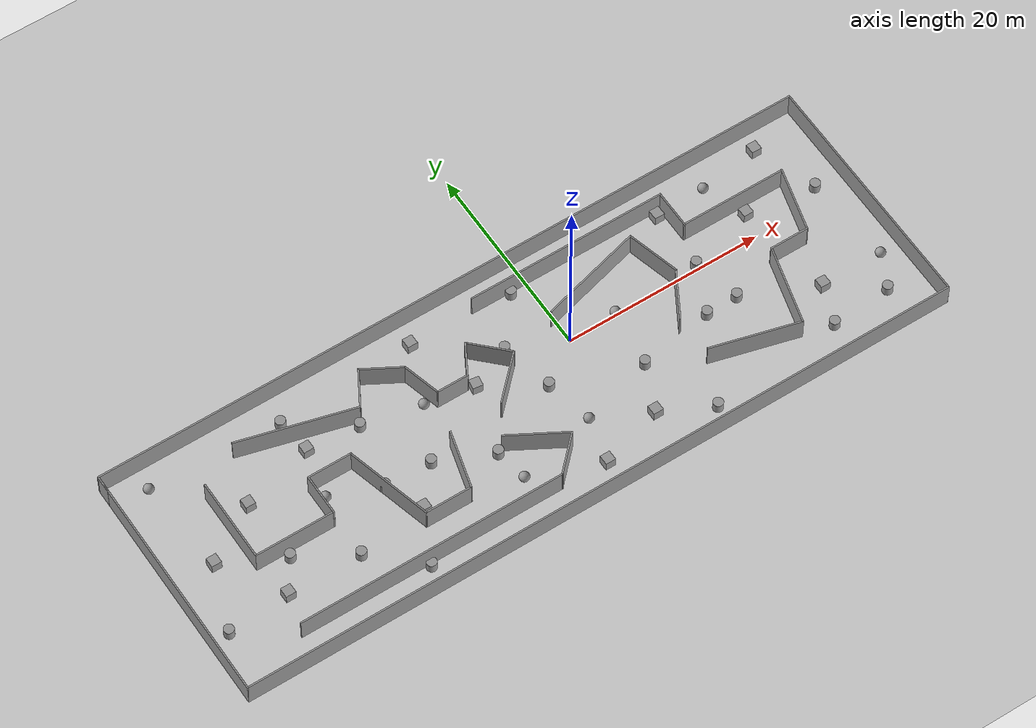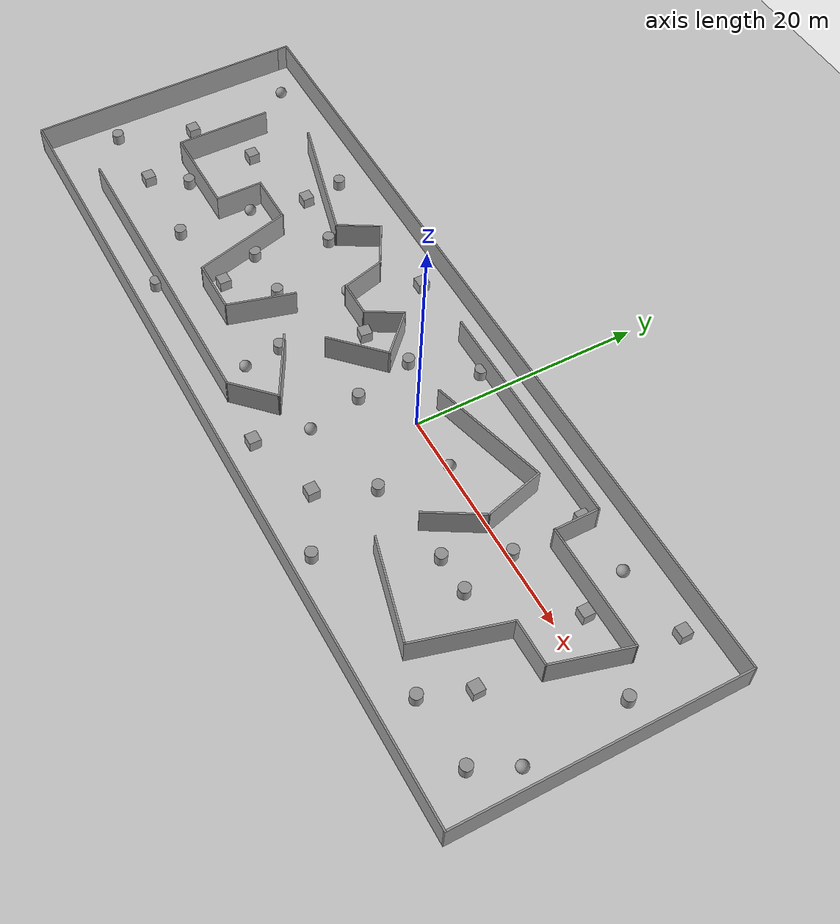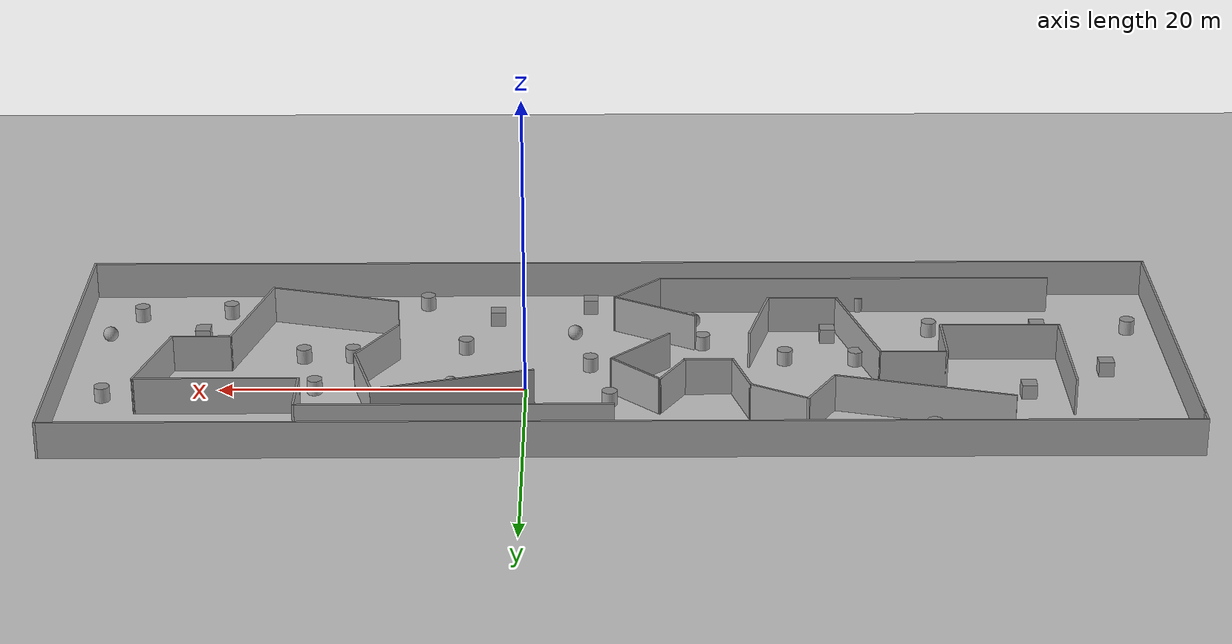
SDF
<sdf version="1.7">
 <world name="default">
  <light name="sun" type="directional">
   <pose>0 0 10 0 -0 0</pose>
   <diffuse>0.8 0.8 0.8 1</diffuse>
   <specular>0.2 0.2 0.2 1</specular>
   <attenuation>
    <range>1000</range>
    <constant>0.9</constant>
    <linear>0.01</linear>
    <quadratic>0.001</quadratic>
   </attenuation>
   <direction>-0.5 0.1 -0.9</direction>
   <spot><inner_angle>0</inner_angle><outer_angle>0</outer_angle><falloff>0</falloff></spot>
  </light>
  <model name="ground_plane">
   <static>1</static>
   <link name="link">
    <collision name="collision">
     <geometry><plane><normal>0 0 1</normal><size>100 100</size></plane></geometry>
     <surface>
      <contact><collide_bitmask>65535</collide_bitmask></contact>
      <friction><ode><mu>100</mu><mu2>50</mu2></ode></friction>
     </surface>
    </collision>
    <visual name="visual">
     <cast_shadows>0</cast_shadows>
     <geometry><plane><normal>0 0 1</normal><size>100 100</size></plane></geometry>
     <material>
      <script><uri>file://media/materials/scripts/gazebo.material</uri><name>Gazebo/Grey</name></script>
     </material>
    </visual>
   </link>
  </model>
  <physics type="ode">
   <max_step_size>0.01</max_step_size>
   <real_time_factor>1</real_time_factor>
   <real_time_update_rate>100</real_time_update_rate>
  </physics>
  <gravity>0 0 -9.8</gravity>
  <magnetic_field>6e-06 2.3e-05 -4.2e-05</magnetic_field>
  <atmosphere type="adiabatic"/>
  <scene><ambient>0.4 0.4 0.4 1</ambient><background>0.7 0.7 0.7 1</background><shadows>1</shadows></scene>
  <spherical_coordinates>
   <surface_model>EARTH_WGS84</surface_model>
   <latitude_deg>0</latitude_deg>
   <longitude_deg>0</longitude_deg>
   <elevation>0</elevation>
   <heading_deg>0</heading_deg>
  </spherical_coordinates>
  <model name="best1">
   <pose>-6.21123 -2.71143 0 0 -0 0</pose>
   <link name="Wall_1">
    <collision name="Wall_1_Collision">
     <geometry><box><size>23.75 0.15 2.5</size></box></geometry>
     <pose>0 0 1.25 0 -0 0</pose>
    </collision>
    <visual name="Wall_1_Visual">
     <pose>0 0 1.25 0 -0 0</pose>
     <geometry><box><size>23.75 0.15 2.5</size></box></geometry>
     <material>
      <script><uri>file://media/materials/scripts/gazebo.material</uri><name>Gazebo/Grey</name></script>
      <ambient>1 1 1 1</ambient>
     </material>
     <meta><layer>0</layer></meta>
    </visual>
    <pose>-36.425 -0.5 0 0 -0 -1.5708</pose>
   </link>
   <link name="Wall_10">
    <collision name="Wall_10_Collision">
     <geometry><box><size>4.5 0.15 2.5</size></box></geometry>
     <pose>0 0 1.25 0 -0 0</pose>
    </collision>
    <visual name="Wall_10_Visual">
     <pose>0 0 1.25 0 -0 0</pose>
     <geometry><box><size>4.5 0.15 2.5</size></box></geometry>
     <material>
      <script><uri>file://media/materials/scripts/gazebo.material</uri><name>Gazebo/Grey</name></script>
      <ambient>1 1 1 1</ambient>
     </material>
     <meta><layer>0</layer></meta>
    </visual>
    <pose>-19.0998 2.30487 0 0 -0 0</pose>
   </link>
   <link name="Wall_11">
    <collision name="Wall_11_Collision">
     <geometry><box><size>9 0.15 2.5</size></box></geometry>
     <pose>0 0 1.25 0 -0 0</pose>
    </collision>
    <visual name="Wall_11_Visual">
     <pose>0 0 1.25 0 -0 0</pose>
     <geometry><box><size>9 0.15 2.5</size></box></geometry>
     <material>
      <script><uri>file://media/materials/scripts/gazebo.material</uri><name>Gazebo/Grey</name></script>
      <ambient>1 1 1 1</ambient>
     </material>
     <meta><layer>0</layer></meta>
    </visual>
    <pose>-15.7795 -1.96935 0 0 -0 -1.309</pose>
   </link>
   <link name="Wall_12">
    <collision name="Wall_12_Collision">
     <geometry><box><size>4.75 0.15 2.5</size></box></geometry>
     <pose>0 0 1.25 0 -0 0</pose>
    </collision>
    <visual name="Wall_12_Visual">
     <pose>0 0 1.25 0 -0 0</pose>
     <geometry><box><size>4.75 0.15 2.5</size></box></geometry>
     <material>
      <script><uri>file://media/materials/scripts/gazebo.material</uri><name>Gazebo/Grey</name></script>
      <ambient>1 1 1 1</ambient>
     </material>
     <meta><layer>0</layer></meta>
    </visual>
    <pose>-12.3343 -6.24357 0 0 -0 0</pose>
   </link>
   <link name="Wall_13">
    <collision name="Wall_13_Collision">
     <geometry><box><size>6 0.15 2.5</size></box></geometry>
     <pose>0 0 1.25 0 -0 0</pose>
    </collision>
    <visual name="Wall_13_Visual">
     <pose>0 0 1.25 0 -0 0</pose>
     <geometry><box><size>6 0.15 2.5</size></box></geometry>
     <material>
      <script><uri>file://media/materials/scripts/gazebo.material</uri><name>Gazebo/Grey</name></script>
      <ambient>1 1 1 1</ambient>
     </material>
     <meta><layer>0</layer></meta>
    </visual>
    <pose>-9.27721 -3.41824 0 0 -0 1.309</pose>
   </link>
   <link name="Wall_15">
    <collision name="Wall_15_Collision">
     <geometry><box><size>10.75 0.15 2.5</size></box></geometry>
     <pose>0 0 1.25 0 -0 0</pose>
    </collision>
    <visual name="Wall_15_Visual">
     <pose>0 0 1.25 0 -0 0</pose>
     <geometry><box><size>10.75 0.15 2.5</size></box></geometry>
     <material>
      <script><uri>file://media/materials/scripts/gazebo.material</uri><name>Gazebo/Grey</name></script>
      <ambient>1 1 1 1</ambient>
     </material>
     <meta><layer>0</layer></meta>
    </visual>
    <pose>10.7922 6.28407 0 0 -0 0.261799</pose>
   </link>
   <link name="Wall_16">
    <collision name="Wall_16_Collision">
     <geometry><box><size>5.5 0.15 2.5</size></box></geometry>
     <pose>0 0 1.25 0 -0 0</pose>
    </collision>
    <visual name="Wall_16_Visual">
     <pose>0 0 1.25 0 -0 0</pose>
     <geometry><box><size>5.5 0.15 2.5</size></box></geometry>
     <material>
      <script><uri>file://media/materials/scripts/gazebo.material</uri><name>Gazebo/Grey</name></script>
      <ambient>1 1 1 1</ambient>
     </material>
     <meta><layer>0</layer></meta>
    </visual>
    <pose>16.604 5.07195 0 0 -0 -1.309</pose>
   </link>
   <link name="Wall_17">
    <collision name="Wall_17_Collision">
     <geometry><box><size>5.25 0.15 2.5</size></box></geometry>
     <pose>0 0 1.25 0 -0 0</pose>
    </collision>
    <visual name="Wall_17_Visual">
     <pose>0 0 1.25 0 -0 0</pose>
     <geometry><box><size>5.25 0.15 2.5</size></box></geometry>
     <material>
      <script><uri>file://media/materials/scripts/gazebo.material</uri><name>Gazebo/Grey</name></script>
      <ambient>1 1 1 1</ambient>
     </material>
     <meta><layer>0</layer></meta>
    </visual>
    <pose>16.0213 0.279738 0 0 -0 -2.0944</pose>
   </link>
   <link name="Wall_19">
    <collision name="Wall_19_Collision">
     <geometry><box><size>9 0.15 2.5</size></box></geometry>
     <pose>0 0 1.25 0 -0 0</pose>
    </collision>
    <visual name="Wall_19_Visual">
     <pose>0 0 1.25 0 -0 0</pose>
     <geometry><box><size>9 0.15 2.5</size></box></geometry>
     <material>
      <script><uri>file://media/materials/scripts/gazebo.material</uri><name>Gazebo/Grey</name></script>
      <ambient>1 1 1 1</ambient>
     </material>
     <meta><layer>0</layer></meta>
    </visual>
    <pose>19.3156 -7.00075 0 0 -0 -0.261799</pose>
   </link>
   <link name="Wall_2">
    <collision name="Wall_2_Collision">
     <geometry><box><size>73 0.15 2.5</size></box></geometry>
     <pose>0 0 1.25 0 -0 0</pose>
    </collision>
    <visual name="Wall_2_Visual">
     <pose>0 0 1.25 0 -0 0</pose>
     <geometry><box><size>73 0.15 2.5</size></box></geometry>
     <material>
      <script><uri>file://media/materials/scripts/gazebo.material</uri><name>Gazebo/Grey</name></script>
      <ambient>1 1 1 1</ambient>
     </material>
     <meta><layer>0</layer></meta>
    </visual>
    <pose>0 -12.3 0 0 -0 0</pose>
   </link>
   <link name="Wall_20">
    <collision name="Wall_20_Collision">
     <geometry><box><size>8.25 0.15 2.5</size></box></geometry>
     <pose>0 0 1.25 0 -0 0</pose>
    </collision>
    <visual name="Wall_20_Visual">
     <pose>0 0 1.25 0 -0 0</pose>
     <geometry><box><size>8.25 0.15 2.5</size></box></geometry>
     <material>
      <script><uri>file://media/materials/scripts/gazebo.material</uri><name>Gazebo/Grey</name></script>
      <ambient>1 1 1 1</ambient>
     </material>
     <meta><layer>0</layer></meta>
    </visual>
    <pose>24.6381 -4.23402 0 0 -0 1.309</pose>
   </link>
   <link name="Wall_21">
    <collision name="Wall_21_Collision">
     <geometry><box><size>4 0.15 2.5</size></box></geometry>
     <pose>0 0 1.25 0 -0 0</pose>
    </collision>
    <visual name="Wall_21_Visual">
     <pose>0 0 1.25 0 -0 0</pose>
     <geometry><box><size>4 0.15 2.5</size></box></geometry>
     <material>
      <script><uri>file://media/materials/scripts/gazebo.material</uri><name>Gazebo/Grey</name></script>
      <ambient>1 1 1 1</ambient>
     </material>
     <meta><layer>0</layer></meta>
    </visual>
    <pose>27.6113 -0.32202 0 0 -0 0</pose>
   </link>
   <link name="Wall_22">
    <collision name="Wall_22_Collision">
     <geometry><box><size>6.75 0.15 2.5</size></box></geometry>
     <pose>0 0 1.25 0 -0 0</pose>
    </collision>
    <visual name="Wall_22_Visual">
     <pose>0 0 1.25 0 -0 0</pose>
     <geometry><box><size>6.75 0.15 2.5</size></box></geometry>
     <material>
      <script><uri>file://media/materials/scripts/gazebo.material</uri><name>Gazebo/Grey</name></script>
      <ambient>1 1 1 1</ambient>
     </material>
     <meta><layer>0</layer></meta>
    </visual>
    <pose>30.3904 2.86553 0 0 -0 1.309</pose>
   </link>
   <link name="Wall_23">
    <collision name="Wall_23_Collision">
     <geometry><box><size>10.75 0.15 2.5</size></box></geometry>
     <pose>0 0 1.25 0 -0 0</pose>
    </collision>
    <visual name="Wall_23_Visual">
     <pose>0 0 1.25 0 -0 0</pose>
     <geometry><box><size>10.75 0.15 2.5</size></box></geometry>
     <material>
      <script><uri>file://media/materials/scripts/gazebo.material</uri><name>Gazebo/Grey</name></script>
      <ambient>1 1 1 1</ambient>
     </material>
     <meta><layer>0</layer></meta>
    </visual>
    <pose>25.9445 6.05309 0 0 -0 3.14159</pose>
   </link>
   <link name="Wall_24">
    <collision name="Wall_24_Collision">
     <geometry><box><size>4 0.15 2.5</size></box></geometry>
     <pose>0 0 1.25 0 -0 0</pose>
    </collision>
    <visual name="Wall_24_Visual">
     <pose>0 0 1.25 0 -0 0</pose>
     <geometry><box><size>4 0.15 2.5</size></box></geometry>
     <material>
      <script><uri>file://media/materials/scripts/gazebo.material</uri><name>Gazebo/Grey</name></script>
      <ambient>1 1 1 1</ambient>
     </material>
     <meta><layer>0</layer></meta>
    </visual>
    <pose>20.6445 7.97809 0 0 -0 1.5708</pose>
   </link>
   <link name="Wall_25">
    <collision name="Wall_25_Collision">
     <geometry><box><size>20.25 0.15 2.5</size></box></geometry>
     <pose>0 0 1.25 0 -0 0</pose>
    </collision>
    <visual name="Wall_25_Visual">
     <pose>0 0 1.25 0 -0 0</pose>
     <geometry><box><size>20.25 0.15 2.5</size></box></geometry>
     <material>
      <script><uri>file://media/materials/scripts/gazebo.material</uri><name>Gazebo/Grey</name></script>
      <ambient>1 1 1 1</ambient>
     </material>
     <meta><layer>0</layer></meta>
    </visual>
    <pose>10.5945 9.90309 0 0 -0 3.14159</pose>
   </link>
   <link name="Wall_27">
    <collision name="Wall_27_Collision">
     <geometry><box><size>26.75 0.15 2.5</size></box></geometry>
     <pose>0 0 1.25 0 -0 0</pose>
    </collision>
    <visual name="Wall_27_Visual">
     <pose>0 0 1.25 0 -0 0</pose>
     <geometry><box><size>26.75 0.15 2.5</size></box></geometry>
     <material>
      <script><uri>file://media/materials/scripts/gazebo.material</uri><name>Gazebo/Grey</name></script>
      <ambient>1 1 1 1</ambient>
     </material>
     <meta><layer>0</layer></meta>
    </visual>
    <pose>-16.0681 -9.50557 0 0 -0 0</pose>
   </link>
   <link name="Wall_28">
    <collision name="Wall_28_Collision">
     <geometry><box><size>4.5 0.15 2.5</size></box></geometry>
     <pose>0 0 1.25 0 -0 0</pose>
    </collision>
    <visual name="Wall_28_Visual">
     <pose>0 0 1.25 0 -0 0</pose>
     <geometry><box><size>4.5 0.15 2.5</size></box></geometry>
     <material>
      <script><uri>file://media/materials/scripts/gazebo.material</uri><name>Gazebo/Grey</name></script>
      <ambient>1 1 1 1</ambient>
     </material>
     <meta><layer>0</layer></meta>
    </visual>
    <pose>-1.23018 -7.96761 0 0 -0 0.785398</pose>
   </link>
   <link name="Wall_29">
    <collision name="Wall_29_Collision">
     <geometry><box><size>6.25 0.15 2.5</size></box></geometry>
     <pose>0 0 1.25 0 -0 0</pose>
    </collision>
    <visual name="Wall_29_Visual">
     <pose>0 0 1.25 0 -0 0</pose>
     <geometry><box><size>6.25 0.15 2.5</size></box></geometry>
     <material>
      <script><uri>file://media/materials/scripts/gazebo.material</uri><name>Gazebo/Grey</name></script>
      <ambient>1 1 1 1</ambient>
     </material>
     <meta><layer>0</layer></meta>
    </visual>
    <pose>-2.3336 -4.90466 0 0 -0 2.61799</pose>
   </link>
   <link name="Wall_3">
    <collision name="Wall_3_Collision">
     <geometry><box><size>24.75 0.15 2.5</size></box></geometry>
     <pose>0 0 1.25 0 -0 0</pose>
    </collision>
    <visual name="Wall_3_Visual">
     <pose>0 0 1.25 0 -0 0</pose>
     <geometry><box><size>24.75 0.15 2.5</size></box></geometry>
     <material>
      <script><uri>file://media/materials/scripts/gazebo.material</uri><name>Gazebo/Grey</name></script>
      <ambient>1 1 1 1</ambient>
     </material>
     <meta><layer>0</layer></meta>
    </visual>
    <pose>36.425 -0 0 0 -0 1.5708</pose>
   </link>
   <link name="Wall_31">
    <collision name="Wall_31_Collision">
     <geometry><box><size>11.75 0.15 2.5</size></box></geometry>
     <pose>0 0 1.25 0 -0 0</pose>
    </collision>
    <visual name="Wall_31_Visual">
     <pose>0 0 1.25 0 -0 0</pose>
     <geometry><box><size>11.75 0.15 2.5</size></box></geometry>
     <material>
      <script><uri>file://media/materials/scripts/gazebo.material</uri><name>Gazebo/Grey</name></script>
      <ambient>1 1 1 1</ambient>
     </material>
     <meta><layer>0</layer></meta>
    </visual>
    <pose>-19.3248 7.36545 0 0 -0 -0.261799</pose>
   </link>
   <link name="Wall_32">
    <collision name="Wall_32_Collision">
     <geometry><box><size>4 0.15 2.5</size></box></geometry>
     <pose>0 0 1.25 0 -0 0</pose>
    </collision>
    <visual name="Wall_32_Visual">
     <pose>0 0 1.25 0 -0 0</pose>
     <geometry><box><size>4 0.15 2.5</size></box></geometry>
     <material>
      <script><uri>file://media/materials/scripts/gazebo.material</uri><name>Gazebo/Grey</name></script>
      <ambient>1 1 1 1</ambient>
     </material>
     <meta><layer>0</layer></meta>
    </visual>
    <pose>-12.7599 7.5314 0 0 -0 1.0472</pose>
   </link>
   <link name="Wall_33">
    <collision name="Wall_33_Collision">
     <geometry><box><size>4.25 0.15 2.5</size></box></geometry>
     <pose>0 0 1.25 0 -0 0</pose>
    </collision>
    <visual name="Wall_33_Visual">
     <pose>0 0 1.25 0 -0 0</pose>
     <geometry><box><size>4.25 0.15 2.5</size></box></geometry>
     <material>
      <script><uri>file://media/materials/scripts/gazebo.material</uri><name>Gazebo/Grey</name></script>
      <ambient>1 1 1 1</ambient>
     </material>
     <meta><layer>0</layer></meta>
    </visual>
    <pose>-10.0221 8.1735 0 0 -0 -0.523599</pose>
   </link>
   <link name="Wall_34">
    <collision name="Wall_34_Collision">
     <geometry><box><size>4 0.15 2.5</size></box></geometry>
     <pose>0 0 1.25 0 -0 0</pose>
    </collision>
    <visual name="Wall_34_Visual">
     <pose>0 0 1.25 0 -0 0</pose>
     <geometry><box><size>4 0.15 2.5</size></box></geometry>
     <material>
      <script><uri>file://media/materials/scripts/gazebo.material</uri><name>Gazebo/Grey</name></script>
      <ambient>1 1 1 1</ambient>
     </material>
     <meta><layer>0</layer></meta>
    </visual>
    <pose>-7.74851 5.28909 0 0 -0 -1.309</pose>
   </link>
   <link name="Wall_35">
    <collision name="Wall_35_Collision">
     <geometry><box><size>3.25 0.15 2.5</size></box></geometry>
     <pose>0 0 1.25 0 -0 0</pose>
    </collision>
    <visual name="Wall_35_Visual">
     <pose>0 0 1.25 0 -0 0</pose>
     <geometry><box><size>3.25 0.15 2.5</size></box></geometry>
     <material>
      <script><uri>file://media/materials/scripts/gazebo.material</uri><name>Gazebo/Grey</name></script>
      <ambient>1 1 1 1</ambient>
     </material>
     <meta><layer>0</layer></meta>
    </visual>
    <pose>-5.70029 3.42968 0 0 -0 0</pose>
   </link>
   <link name="Wall_36">
    <collision name="Wall_36_Collision">
     <geometry><box><size>3.5 0.15 2.5</size></box></geometry>
     <pose>0 0 1.25 0 -0 0</pose>
    </collision>
    <visual name="Wall_36_Visual">
     <pose>0 0 1.25 0 -0 0</pose>
     <geometry><box><size>3.5 0.15 2.5</size></box></geometry>
     <material>
      <script><uri>file://media/materials/scripts/gazebo.material</uri><name>Gazebo/Grey</name></script>
      <ambient>1 1 1 1</ambient>
     </material>
     <meta><layer>0</layer></meta>
    </visual>
    <pose>-3.31279 4.88028 0 0 -0 1.0472</pose>
   </link>
   <link name="Wall_37">
    <collision name="Wall_37_Collision">
     <geometry><box><size>4.5 0.15 2.5</size></box></geometry>
     <pose>0 0 1.25 0 -0 0</pose>
    </collision>
    <visual name="Wall_37_Visual">
     <pose>0 0 1.25 0 -0 0</pose>
     <geometry><box><size>4.5 0.15 2.5</size></box></geometry>
     <material>
      <script><uri>file://media/materials/scripts/gazebo.material</uri><name>Gazebo/Grey</name></script>
      <ambient>1 1 1 1</ambient>
     </material>
     <meta><layer>0</layer></meta>
    </visual>
    <pose>-0.93733 4.79291 0 0 -0 -0.785398</pose>
   </link>
   <link name="Wall_38">
    <collision name="Wall_38_Collision">
     <geometry><box><size>5.5 0.15 2.5</size></box></geometry>
     <pose>0 0 1.25 0 -0 0</pose>
    </collision>
    <visual name="Wall_38_Visual">
     <pose>0 0 1.25 0 -0 0</pose>
     <geometry><box><size>5.5 0.15 2.5</size></box></geometry>
     <material>
      <script><uri>file://media/materials/scripts/gazebo.material</uri><name>Gazebo/Grey</name></script>
      <ambient>1 1 1 1</ambient>
     </material>
     <meta><layer>0</layer></meta>
    </visual>
    <pose>-1.29088 1.36344 0 0 -0 -2.35619</pose>
   </link>
   <link name="Wall_4">
    <collision name="Wall_4_Collision">
     <geometry><box><size>73 0.15 2.5</size></box></geometry>
     <pose>0 0 1.25 0 -0 0</pose>
    </collision>
    <visual name="Wall_4_Visual">
     <pose>0 0 1.25 0 -0 0</pose>
     <geometry><box><size>73 0.15 2.5</size></box></geometry>
     <material>
      <script><uri>file://media/materials/scripts/gazebo.material</uri><name>Gazebo/Grey</name></script>
      <ambient>1 1 1 1</ambient>
     </material>
     <meta><layer>0</layer></meta>
    </visual>
    <pose>0 12.3 0 0 -0 3.14159</pose>
   </link>
   <link name="Wall_5">
    <collision name="Wall_5_Collision">
     <geometry><box><size>1.75 0.15 2.5</size></box></geometry>
     <pose>0 0 1.25 0 -0 0</pose>
    </collision>
    <visual name="Wall_5_Visual">
     <pose>0 0 1.25 0 -0 0</pose>
     <geometry><box><size>1.75 0.15 2.5</size></box></geometry>
     <material>
      <script><uri>file://media/materials/scripts/gazebo.material</uri><name>Gazebo/Grey</name></script>
      <ambient>1 1 1 1</ambient>
     </material>
     <meta><layer>0</layer></meta>
    </visual>
    <pose>-36.425 11.5 0 0 -0 -1.5708</pose>
   </link>
   <link name="Wall_7">
    <collision name="Wall_7_Collision">
     <geometry><box><size>8.5 0.15 2.5</size></box></geometry>
     <pose>0 0 1.25 0 -0 0</pose>
    </collision>
    <visual name="Wall_7_Visual">
     <pose>0 0 1.25 0 -0 0</pose>
     <geometry><box><size>8.5 0.15 2.5</size></box></geometry>
     <material>
      <script><uri>file://media/materials/scripts/gazebo.material</uri><name>Gazebo/Grey</name></script>
      <ambient>1 1 1 1</ambient>
     </material>
     <meta><layer>0</layer></meta>
    </visual>
    <pose>-29.1248 2.37987 0 0 -0 -1.5708</pose>
   </link>
   <link name="Wall_8">
    <collision name="Wall_8_Collision">
     <geometry><box><size>8 0.15 2.5</size></box></geometry>
     <pose>0 0 1.25 0 -0 0</pose>
    </collision>
    <visual name="Wall_8_Visual">
     <pose>0 0 1.25 0 -0 0</pose>
     <geometry><box><size>8 0.15 2.5</size></box></geometry>
     <material>
      <script><uri>file://media/materials/scripts/gazebo.material</uri><name>Gazebo/Grey</name></script>
      <ambient>1 1 1 1</ambient>
     </material>
     <meta><layer>0</layer></meta>
    </visual>
    <pose>-25.1998 -1.79513 0 0 -0 0</pose>
   </link>
   <link name="Wall_9">
    <collision name="Wall_9_Collision">
     <geometry><box><size>4.25 0.15 2.5</size></box></geometry>
     <pose>0 0 1.25 0 -0 0</pose>
    </collision>
    <visual name="Wall_9_Visual">
     <pose>0 0 1.25 0 -0 0</pose>
     <geometry><box><size>4.25 0.15 2.5</size></box></geometry>
     <material>
      <script><uri>file://media/materials/scripts/gazebo.material</uri><name>Gazebo/Grey</name></script>
      <ambient>1 1 1 1</ambient>
     </material>
     <meta><layer>0</layer></meta>
    </visual>
    <pose>-21.2748 0.25487 0 0 -0 1.5708</pose>
   </link>
   <static>1</static>
  </model>
  <model name="unit_sphere">
   <pose>-3.19752 -7.78256 0.5 0 -0 0</pose>
   <link name="link">
    <inertial>
     <mass>1</mass>
     <inertia><ixx>0.1</ixx><ixy>0</ixy><ixz>0</ixz><iyy>0.1</iyy><iyz>0</iyz><izz>0.1</izz></inertia>
    </inertial>
    <collision name="collision"><geometry><sphere><radius>0.5</radius></sphere></geometry></collision>
    <visual name="visual">
     <geometry><sphere><radius>0.5</radius></sphere></geometry>
     <material>
      <script><name>Gazebo/Grey</name><uri>file://media/materials/scripts/gazebo.material</uri></script>
     </material>
    </visual>
   </link>
  </model>
  <model name="unit_cylinder">
   <pose>4.09098 -5.73262 0.499789 0.000422 0.000422 -3.2e-05</pose>
   <link name="link">
    <inertial>
     <mass>1</mass>
     <inertia><ixx>0.145833</ixx><ixy>0</ixy><ixz>0</ixz><iyy>0.145833</iyy><iyz>0</iyz><izz>0.125</izz></inertia>
    </inertial>
    <collision name="collision">
     <geometry><cylinder><radius>0.5</radius><length>1</length></cylinder></geometry>
    </collision>
    <visual name="visual">
     <geometry><cylinder><radius>0.5</radius><length>1</length></cylinder></geometry>
     <material>
      <script><name>Gazebo/Grey</name><uri>file://media/materials/scripts/gazebo.material</uri></script>
     </material>
    </visual>
   </link>
  </model>
  <model name="unit_cylinder_0">
   <pose>-4.23132 -2.99054 0.499824 -0.000249 -0.000249 -3.1e-05</pose>
   <link name="link">
    <inertial>
     <mass>1</mass>
     <inertia><ixx>0.145833</ixx><ixy>0</ixy><ixz>0</ixz><iyy>0.145833</iyy><iyz>0</iyz><izz>0.125</izz></inertia>
    </inertial>
    <collision name="collision">
     <geometry><cylinder><radius>0.5</radius><length>1</length></cylinder></geometry>
    </collision>
    <visual name="visual">
     <geometry><cylinder><radius>0.5</radius><length>1</length></cylinder></geometry>
     <material>
      <script><name>Gazebo/Grey</name><uri>file://media/materials/scripts/gazebo.material</uri></script>
     </material>
    </visual>
   </link>
  </model>
  <model name="unit_box">
   <pose>-12.1921 7.2497 0.49907 -0.0001 0 1e-06</pose>
   <link name="link">
    <inertial>
     <mass>1</mass>
     <inertia>
      <ixx>0.166667</ixx>
      <ixy>0</ixy>
      <ixz>0</ixz>
      <iyy>0.166667</iyy>
      <iyz>0</iyz>
      <izz>0.166667</izz>
     </inertia>
    </inertial>
    <collision name="collision"><geometry><box><size>1 1 1</size></box></geometry></collision>
    <visual name="visual">
     <geometry><box><size>1 1 1</size></box></geometry>
     <material>
      <script><name>Gazebo/Grey</name><uri>file://media/materials/scripts/gazebo.material</uri></script>
     </material>
    </visual>
   </link>
  </model>
  <model name="unit_cylinder_1">
   <pose>-27.1294 -8.33878 0.499096 4.8e-05 4.8e-05 -3e-05</pose>
   <link name="link">
    <inertial>
     <mass>1</mass>
     <inertia><ixx>0.145833</ixx><ixy>0</ixy><ixz>0</ixz><iyy>0.145833</iyy><iyz>0</iyz><izz>0.125</izz></inertia>
    </inertial>
    <collision name="collision">
     <geometry><cylinder><radius>0.5</radius><length>1</length></cylinder></geometry>
    </collision>
    <visual name="visual">
     <geometry><cylinder><radius>0.5</radius><length>1</length></cylinder></geometry>
     <material>
      <script><name>Gazebo/Grey</name><uri>file://media/materials/scripts/gazebo.material</uri></script>
     </material>
    </visual>
   </link>
  </model>
  <model name="unit_box_0">
   <pose>-32.7056 1.19646 0.49907 -0.0001 0 2e-06</pose>
   <link name="link">
    <inertial>
     <mass>1</mass>
     <inertia>
      <ixx>0.166667</ixx>
      <ixy>0</ixy>
      <ixz>0</ixz>
      <iyy>0.166667</iyy>
      <iyz>0</iyz>
      <izz>0.166667</izz>
     </inertia>
    </inertial>
    <collision name="collision"><geometry><box><size>1 1 1</size></box></geometry></collision>
    <visual name="visual">
     <geometry><box><size>1 1 1</size></box></geometry>
     <material>
      <script><name>Gazebo/Grey</name><uri>file://media/materials/scripts/gazebo.material</uri></script>
     </material>
    </visual>
   </link>
  </model>
  <model name="unit_cylinder_2">
   <pose>14.8236 -4.41774 0.49912 0 0 -2.9e-05</pose>
   <link name="link">
    <inertial>
     <mass>1</mass>
     <inertia><ixx>0.145833</ixx><ixy>0</ixy><ixz>0</ixz><iyy>0.145833</iyy><iyz>0</iyz><izz>0.125</izz></inertia>
    </inertial>
    <collision name="collision">
     <geometry><cylinder><radius>0.5</radius><length>1</length></cylinder></geometry>
    </collision>
    <visual name="visual">
     <geometry><cylinder><radius>0.5</radius><length>1</length></cylinder></geometry>
     <material>
      <script><name>Gazebo/Grey</name><uri>file://media/materials/scripts/gazebo.material</uri></script>
     </material>
    </visual>
   </link>
  </model>
  <model name="unit_sphere_0">
   <pose>18.8168 6.69899 0.5 0 -0 0</pose>
   <link name="link">
    <inertial>
     <mass>1</mass>
     <inertia><ixx>0.1</ixx><ixy>0</ixy><ixz>0</ixz><iyy>0.1</iyy><iyz>0</iyz><izz>0.1</izz></inertia>
    </inertial>
    <collision name="collision"><geometry><sphere><radius>0.5</radius></sphere></geometry></collision>
    <visual name="visual">
     <geometry><sphere><radius>0.5</radius></sphere></geometry>
     <material>
      <script><name>Gazebo/Grey</name><uri>file://media/materials/scripts/gazebo.material</uri></script>
     </material>
    </visual>
   </link>
  </model>
  <model name="unit_cylinder_3">
   <pose>6.99568 -12.8874 0.499824 -0.000249 -0.000249 -2.8e-05</pose>
   <link name="link">
    <inertial>
     <mass>1</mass>
     <inertia><ixx>0.145833</ixx><ixy>0</ixy><ixz>0</ixz><iyy>0.145833</iyy><iyz>0</iyz><izz>0.125</izz></inertia>
    </inertial>
    <collision name="collision">
     <geometry><cylinder><radius>0.5</radius><length>1</length></cylinder></geometry>
    </collision>
    <visual name="visual">
     <geometry><cylinder><radius>0.5</radius><length>1</length></cylinder></geometry>
     <material>
      <script><name>Gazebo/Grey</name><uri>file://media/materials/scripts/gazebo.material</uri></script>
     </material>
    </visual>
   </link>
  </model>
  <model name="unit_box_1">
   <pose>-4.24576 -12.284 0.499798 -0.000404 1e-06 -2e-06</pose>
   <link name="link">
    <inertial>
     <mass>1</mass>
     <inertia>
      <ixx>0.166667</ixx>
      <ixy>0</ixy>
      <ixz>0</ixz>
      <iyy>0.166667</iyy>
      <iyz>0</iyz>
      <izz>0.166667</izz>
     </inertia>
    </inertial>
    <collision name="collision"><geometry><box><size>1 1 1</size></box></geometry></collision>
    <visual name="visual">
     <geometry><box><size>1 1 1</size></box></geometry>
     <material>
      <script><name>Gazebo/Grey</name><uri>file://media/materials/scripts/gazebo.material</uri></script>
     </material>
    </visual>
   </link>
  </model>
  <model name="unit_sphere_1">
   <pose>4.87442 0.112739 0.5 0 -0 0</pose>
   <link name="link">
    <inertial>
     <mass>1</mass>
     <inertia><ixx>0.1</ixx><ixy>0</ixy><ixz>0</ixz><iyy>0.1</iyy><iyz>0</iyz><izz>0.1</izz></inertia>
    </inertial>
    <collision name="collision"><geometry><sphere><radius>0.5</radius></sphere></geometry></collision>
    <visual name="visual">
     <geometry><sphere><radius>0.5</radius></sphere></geometry>
     <material>
      <script><name>Gazebo/Grey</name><uri>file://media/materials/scripts/gazebo.material</uri></script>
     </material>
    </visual>
   </link>
  </model>
  <model name="unit_cylinder_4">
   <pose>13.719 0.356237 0.49912 0 0 -2.6e-05</pose>
   <link name="link">
    <inertial>
     <mass>1</mass>
     <inertia><ixx>0.145833</ixx><ixy>0</ixy><ixz>0</ixz><iyy>0.145833</iyy><iyz>0</iyz><izz>0.125</izz></inertia>
    </inertial>
    <collision name="collision">
     <geometry><cylinder><radius>0.5</radius><length>1</length></cylinder></geometry>
    </collision>
    <visual name="visual">
     <geometry><cylinder><radius>0.5</radius><length>1</length></cylinder></geometry>
     <material>
      <script><name>Gazebo/Grey</name><uri>file://media/materials/scripts/gazebo.material</uri></script>
     </material>
    </visual>
   </link>
  </model>
  <model name="unit_cylinder_5">
   <pose>27.3972 1.35946 0.499789 0.000422 0.000422 -2.5e-05</pose>
   <link name="link">
    <inertial>
     <mass>1</mass>
     <inertia><ixx>0.145833</ixx><ixy>0</ixy><ixz>0</ixz><iyy>0.145833</iyy><iyz>0</iyz><izz>0.125</izz></inertia>
    </inertial>
    <collision name="collision">
     <geometry><cylinder><radius>0.5</radius><length>1</length></cylinder></geometry>
    </collision>
    <visual name="visual">
     <geometry><cylinder><radius>0.5</radius><length>1</length></cylinder></geometry>
     <material>
      <script><name>Gazebo/Grey</name><uri>file://media/materials/scripts/gazebo.material</uri></script>
     </material>
    </visual>
   </link>
  </model>
  <model name="unit_box_2">
   <pose>21.9003 -7.64609 0.499798 -0.000404 1e-06 -2e-06</pose>
   <link name="link">
    <inertial>
     <mass>1</mass>
     <inertia>
      <ixx>0.166667</ixx>
      <ixy>0</ixy>
      <ixz>0</ixz>
      <iyy>0.166667</iyy>
      <iyz>0</iyz>
      <izz>0.166667</izz>
     </inertia>
    </inertial>
    <collision name="collision"><geometry><box><size>1 1 1</size></box></geometry></collision>
    <visual name="visual">
     <geometry><box><size>1 1 1</size></box></geometry>
     <material>
      <script><name>Gazebo/Grey</name><uri>file://media/materials/scripts/gazebo.material</uri></script>
     </material>
    </visual>
   </link>
  </model>
  <model name="unit_cylinder_6">
   <pose>20.439 -11.5711 0.499096 4.8e-05 4.8e-05 -2.3e-05</pose>
   <link name="link">
    <inertial>
     <mass>1</mass>
     <inertia><ixx>0.145833</ixx><ixy>0</ixy><ixz>0</ixz><iyy>0.145833</iyy><iyz>0</iyz><izz>0.125</izz></inertia>
    </inertial>
    <collision name="collision">
     <geometry><cylinder><radius>0.5</radius><length>1</length></cylinder></geometry>
    </collision>
    <visual name="visual">
     <geometry><cylinder><radius>0.5</radius><length>1</length></cylinder></geometry>
     <material>
      <script><name>Gazebo/Grey</name><uri>file://media/materials/scripts/gazebo.material</uri></script>
     </material>
    </visual>
   </link>
  </model>
  <model name="unit_sphere_2">
   <pose>28.1793 -7.72909 0.5 0 -0 0</pose>
   <link name="link">
    <inertial>
     <mass>1</mass>
     <inertia><ixx>0.1</ixx><ixy>0</ixy><ixz>0</ixz><iyy>0.1</iyy><iyz>0</iyz><izz>0.1</izz></inertia>
    </inertial>
    <collision name="collision"><geometry><sphere><radius>0.5</radius></sphere></geometry></collision>
    <visual name="visual">
     <geometry><sphere><radius>0.5</radius></sphere></geometry>
     <material>
      <script><name>Gazebo/Grey</name><uri>file://media/materials/scripts/gazebo.material</uri></script>
     </material>
    </visual>
   </link>
  </model>
  <model name="unit_cylinder_7">
   <pose>26.496 -11.1347 0.499789 0.000422 0.000422 -2.1e-05</pose>
   <link name="link">
    <inertial>
     <mass>1</mass>
     <inertia><ixx>0.145833</ixx><ixy>0</ixy><ixz>0</ixz><iyy>0.145833</iyy><iyz>0</iyz><izz>0.125</izz></inertia>
    </inertial>
    <collision name="collision">
     <geometry><cylinder><radius>0.5</radius><length>1</length></cylinder></geometry>
    </collision>
    <visual name="visual">
     <geometry><cylinder><radius>0.5</radius><length>1</length></cylinder></geometry>
     <material>
      <script><name>Gazebo/Grey</name><uri>file://media/materials/scripts/gazebo.material</uri></script>
     </material>
    </visual>
   </link>
  </model>
  <model name="unit_box_3">
   <pose>25.0159 7.6148 0.499798 -0.000404 1e-06 -1e-06</pose>
   <link name="link">
    <inertial>
     <mass>1</mass>
     <inertia>
      <ixx>0.166667</ixx>
      <ixy>0</ixy>
      <ixz>0</ixz>
      <iyy>0.166667</iyy>
      <iyz>0</iyz>
      <izz>0.166667</izz>
     </inertia>
    </inertial>
    <collision name="collision"><geometry><box><size>1 1 1</size></box></geometry></collision>
    <visual name="visual">
     <geometry><box><size>1 1 1</size></box></geometry>
     <material>
      <script><name>Gazebo/Grey</name><uri>file://media/materials/scripts/gazebo.material</uri></script>
     </material>
    </visual>
   </link>
  </model>
  <model name="unit_cylinder_8">
   <pose>-22.6661 -12.573 0.499096 4.8e-05 4.8e-05 -1.9e-05</pose>
   <link name="link">
    <inertial>
     <mass>1</mass>
     <inertia><ixx>0.145833</ixx><ixy>0</ixy><ixz>0</ixz><iyy>0.145833</iyy><iyz>0</iyz><izz>0.125</izz></inertia>
    </inertial>
    <collision name="collision">
     <geometry><cylinder><radius>0.5</radius><length>1</length></cylinder></geometry>
    </collision>
    <visual name="visual">
     <geometry><cylinder><radius>0.5</radius><length>1</length></cylinder></geometry>
     <material>
      <script><name>Gazebo/Grey</name><uri>file://media/materials/scripts/gazebo.material</uri></script>
     </material>
    </visual>
   </link>
  </model>
  <model name="unit_cylinder_9">
   <pose>-40.6526 -8.60347 0.49912 0 0 -1.8e-05</pose>
   <link name="link">
    <inertial>
     <mass>1</mass>
     <inertia><ixx>0.145833</ixx><ixy>0</ixy><ixz>0</ixz><iyy>0.145833</iyy><iyz>0</iyz><izz>0.125</izz></inertia>
    </inertial>
    <collision name="collision">
     <geometry><cylinder><radius>0.5</radius><length>1</length></cylinder></geometry>
    </collision>
    <visual name="visual">
     <geometry><cylinder><radius>0.5</radius><length>1</length></cylinder></geometry>
     <material>
      <script><name>Gazebo/Grey</name><uri>file://media/materials/scripts/gazebo.material</uri></script>
     </material>
    </visual>
   </link>
  </model>
  <model name="unit_box_4">
   <pose>-38.2221 -2.17117 0.499798 -0.000404 1e-06 -1e-06</pose>
   <link name="link">
    <inertial>
     <mass>1</mass>
     <inertia>
      <ixx>0.166667</ixx>
      <ixy>0</ixy>
      <ixz>0</ixz>
      <iyy>0.166667</iyy>
      <iyz>0</iyz>
      <izz>0.166667</izz>
     </inertia>
    </inertial>
    <collision name="collision"><geometry><box><size>1 1 1</size></box></geometry></collision>
    <visual name="visual">
     <geometry><box><size>1 1 1</size></box></geometry>
     <material>
      <script><name>Gazebo/Grey</name><uri>file://media/materials/scripts/gazebo.material</uri></script>
     </material>
    </visual>
   </link>
  </model>
  <model name="unit_sphere_3">
   <pose>-39.1021 7.25392 0.5 0 -0 0</pose>
   <link name="link">
    <inertial>
     <mass>1</mass>
     <inertia><ixx>0.1</ixx><ixy>0</ixy><ixz>0</ixz><iyy>0.1</iyy><iyz>0</iyz><izz>0.1</izz></inertia>
    </inertial>
    <collision name="collision"><geometry><sphere><radius>0.5</radius></sphere></geometry></collision>
    <visual name="visual">
     <geometry><sphere><radius>0.5</radius></sphere></geometry>
     <material>
      <script><name>Gazebo/Grey</name><uri>file://media/materials/scripts/gazebo.material</uri></script>
     </material>
    </visual>
   </link>
  </model>
  <model name="unit_cylinder_10">
   <pose>-26.0458 6.62081 0.499824 -0.000249 -0.000249 -1.6e-05</pose>
   <link name="link">
    <inertial>
     <mass>1</mass>
     <inertia><ixx>0.145833</ixx><ixy>0</ixy><ixz>0</ixz><iyy>0.145833</iyy><iyz>0</iyz><izz>0.125</izz></inertia>
    </inertial>
    <collision name="collision">
     <geometry><cylinder><radius>0.5</radius><length>1</length></cylinder></geometry>
    </collision>
    <visual name="visual">
     <geometry><cylinder><radius>0.5</radius><length>1</length></cylinder></geometry>
     <material>
      <script><name>Gazebo/Grey</name><uri>file://media/materials/scripts/gazebo.material</uri></script>
     </material>
    </visual>
   </link>
  </model>
  <model name="unit_cylinder_11">
   <pose>-21.8123 -3.73871 0.499096 4.8e-05 4.8e-05 -1.6e-05</pose>
   <link name="link">
    <inertial>
     <mass>1</mass>
     <inertia><ixx>0.145833</ixx><ixy>0</ixy><ixz>0</ixz><iyy>0.145833</iyy><iyz>0</iyz><izz>0.125</izz></inertia>
    </inertial>
    <collision name="collision">
     <geometry><cylinder><radius>0.5</radius><length>1</length></cylinder></geometry>
    </collision>
    <visual name="visual">
     <geometry><cylinder><radius>0.5</radius><length>1</length></cylinder></geometry>
     <material>
      <script><name>Gazebo/Grey</name><uri>file://media/materials/scripts/gazebo.material</uri></script>
     </material>
    </visual>
   </link>
  </model>
  <model name="unit_sphere_4">
   <pose>-14.4968 1.37666 0.5 0 -0 0</pose>
   <link name="link">
    <inertial>
     <mass>1</mass>
     <inertia><ixx>0.1</ixx><ixy>0</ixy><ixz>0</ixz><iyy>0.1</iyy><iyz>0</iyz><izz>0.1</izz></inertia>
    </inertial>
    <collision name="collision"><geometry><sphere><radius>0.5</radius></sphere></geometry></collision>
    <visual name="visual">
     <geometry><sphere><radius>0.5</radius></sphere></geometry>
     <material>
      <script><name>Gazebo/Grey</name><uri>file://media/materials/scripts/gazebo.material</uri></script>
     </material>
    </visual>
   </link>
  </model>
  <model name="unit_box_5">
   <pose>-9.66152 0.463306 0.49907 0 0.0001 -0.133474</pose>
   <link name="link">
    <inertial>
     <mass>1</mass>
     <inertia>
      <ixx>0.166667</ixx>
      <ixy>0</ixy>
      <ixz>0</ixz>
      <iyy>0.166667</iyy>
      <iyz>0</iyz>
      <izz>0.166667</izz>
     </inertia>
    </inertial>
    <collision name="collision"><geometry><box><size>1 1 1</size></box></geometry></collision>
    <visual name="visual">
     <geometry><box><size>1 1 1</size></box></geometry>
     <material>
      <script><name>Gazebo/Grey</name><uri>file://media/materials/scripts/gazebo.material</uri></script>
     </material>
    </visual>
   </link>
  </model>
  <model name="unit_cylinder_12">
   <pose>-17.1367 -3.90079 0.499824 -0.000249 -0.000249 -1.3e-05</pose>
   <link name="link">
    <inertial>
     <mass>1</mass>
     <inertia><ixx>0.145833</ixx><ixy>0</ixy><ixz>0</ixz><iyy>0.145833</iyy><iyz>0</iyz><izz>0.125</izz></inertia>
    </inertial>
    <collision name="collision">
     <geometry><cylinder><radius>0.5</radius><length>1</length></cylinder></geometry>
    </collision>
    <visual name="visual">
     <geometry><cylinder><radius>0.5</radius><length>1</length></cylinder></geometry>
     <material>
      <script><name>Gazebo/Grey</name><uri>file://media/materials/scripts/gazebo.material</uri></script>
     </material>
    </visual>
   </link>
  </model>
  <model name="unit_box_6">
   <pose>-25.5744 3.11549 0.49907 0.0001 0 -1e-06</pose>
   <link name="link">
    <inertial>
     <mass>1</mass>
     <inertia>
      <ixx>0.166667</ixx>
      <ixy>0</ixy>
      <ixz>0</ixz>
      <iyy>0.166667</iyy>
      <iyz>0</iyz>
      <izz>0.166667</izz>
     </inertia>
    </inertial>
    <collision name="collision"><geometry><box><size>1 1 1</size></box></geometry></collision>
    <visual name="visual">
     <geometry><box><size>1 1 1</size></box></geometry>
     <material>
      <script><name>Gazebo/Grey</name><uri>file://media/materials/scripts/gazebo.material</uri></script>
     </material>
    </visual>
   </link>
  </model>
  <model name="unit_cylinder_13">
   <pose>-1.79243 6.85612 0.49912 0 0 -1.1e-05</pose>
   <link name="link">
    <inertial>
     <mass>1</mass>
     <inertia><ixx>0.145833</ixx><ixy>0</ixy><ixz>0</ixz><iyy>0.145833</iyy><iyz>0</iyz><izz>0.125</izz></inertia>
    </inertial>
    <collision name="collision">
     <geometry><cylinder><radius>0.5</radius><length>1</length></cylinder></geometry>
    </collision>
    <visual name="visual">
     <geometry><cylinder><radius>0.5</radius><length>1</length></cylinder></geometry>
     <material>
      <script><name>Gazebo/Grey</name><uri>file://media/materials/scripts/gazebo.material</uri></script>
     </material>
    </visual>
   </link>
  </model>
  <model name="unit_cylinder_14">
   <pose>-5.46849 2.24511 0.499789 0.000422 0.000422 -1e-05</pose>
   <link name="link">
    <inertial>
     <mass>1</mass>
     <inertia><ixx>0.145833</ixx><ixy>0</ixy><ixz>0</ixz><iyy>0.145833</iyy><iyz>0</iyz><izz>0.125</izz></inertia>
    </inertial>
    <collision name="collision">
     <geometry><cylinder><radius>0.5</radius><length>1</length></cylinder></geometry>
    </collision>
    <visual name="visual">
     <geometry><cylinder><radius>0.5</radius><length>1</length></cylinder></geometry>
     <material>
      <script><name>Gazebo/Grey</name><uri>file://media/materials/scripts/gazebo.material</uri></script>
     </material>
    </visual>
   </link>
  </model>
  <model name="unit_box_7">
   <pose>13.6641 6.52976 0.499798 -0.000404 1e-06 -1e-06</pose>
   <link name="link">
    <inertial>
     <mass>1</mass>
     <inertia>
      <ixx>0.166667</ixx>
      <ixy>0</ixy>
      <ixz>0</ixz>
      <iyy>0.166667</iyy>
      <iyz>0</iyz>
      <izz>0.166667</izz>
     </inertia>
    </inertial>
    <collision name="collision"><geometry><box><size>1 1 1</size></box></geometry></collision>
    <visual name="visual">
     <geometry><box><size>1 1 1</size></box></geometry>
     <material>
      <script><name>Gazebo/Grey</name><uri>file://media/materials/scripts/gazebo.material</uri></script>
     </material>
    </visual>
   </link>
  </model>
  <model name="unit_box_8">
   <pose>2.07585 -10.3622 0.49907 0.0001 -0 0</pose>
   <link name="link">
    <inertial>
     <mass>1</mass>
     <inertia>
      <ixx>0.166667</ixx>
      <ixy>0</ixy>
      <ixz>0</ixz>
      <iyy>0.166667</iyy>
      <iyz>0</iyz>
      <izz>0.166667</izz>
     </inertia>
    </inertial>
    <collision name="collision"><geometry><box><size>1 1 1</size></box></geometry></collision>
    <visual name="visual">
     <geometry><box><size>1 1 1</size></box></geometry>
     <material>
      <script><name>Gazebo/Grey</name><uri>file://media/materials/scripts/gazebo.material</uri></script>
     </material>
    </visual>
   </link>
  </model>
  <model name="unit_cylinder_15">
   <pose>11.5721 -4.49335 0.49912 0 0 -7e-06</pose>
   <link name="link">
    <inertial>
     <mass>1</mass>
     <inertia><ixx>0.145833</ixx><ixy>0</ixy><ixz>0</ixz><iyy>0.145833</iyy><iyz>0</iyz><izz>0.125</izz></inertia>
    </inertial>
    <collision name="collision">
     <geometry><cylinder><radius>0.5</radius><length>1</length></cylinder></geometry>
    </collision>
    <visual name="visual">
     <geometry><cylinder><radius>0.5</radius><length>1</length></cylinder></geometry>
     <material>
      <script><name>Gazebo/Grey</name><uri>file://media/materials/scripts/gazebo.material</uri></script>
     </material>
    </visual>
   </link>
  </model>
  <model name="unit_box_9">
   <pose>-34.4487 -8.19582 0.49907 0.0001 -0 0</pose>
   <link name="link">
    <inertial>
     <mass>1</mass>
     <inertia>
      <ixx>0.166667</ixx>
      <ixy>0</ixy>
      <ixz>0</ixz>
      <iyy>0.166667</iyy>
      <iyz>0</iyz>
      <izz>0.166667</izz>
     </inertia>
    </inertial>
    <collision name="collision"><geometry><box><size>1 1 1</size></box></geometry></collision>
    <visual name="visual">
     <geometry><box><size>1 1 1</size></box></geometry>
     <material>
      <script><name>Gazebo/Grey</name><uri>file://media/materials/scripts/gazebo.material</uri></script>
     </material>
    </visual>
   </link>
  </model>
  <model name="unit_cylinder_16">
   <pose>-32.375 -5.17007 0.499824 -0.000249 -0.000249 -6e-06</pose>
   <link name="link">
    <inertial>
     <mass>1</mass>
     <inertia><ixx>0.145833</ixx><ixy>0</ixy><ixz>0</ixz><iyy>0.145833</iyy><iyz>0</iyz><izz>0.125</izz></inertia>
    </inertial>
    <collision name="collision">
     <geometry><cylinder><radius>0.5</radius><length>1</length></cylinder></geometry>
    </collision>
    <visual name="visual">
     <geometry><cylinder><radius>0.5</radius><length>1</length></cylinder></geometry>
     <material>
      <script><name>Gazebo/Grey</name><uri>file://media/materials/scripts/gazebo.material</uri></script>
     </material>
    </visual>
   </link>
  </model>
  <model name="unit_sphere_5">
   <pose>-26.6996 -1.84996 0.5 0 -0 0</pose>
   <link name="link">
    <inertial>
     <mass>1</mass>
     <inertia><ixx>0.1</ixx><ixy>0</ixy><ixz>0</ixz><iyy>0.1</iyy><iyz>0</iyz><izz>0.1</izz></inertia>
    </inertial>
    <collision name="collision"><geometry><sphere><radius>0.5</radius></sphere></geometry></collision>
    <visual name="visual">
     <geometry><sphere><radius>0.5</radius></sphere></geometry>
     <material>
      <script><name>Gazebo/Grey</name><uri>file://media/materials/scripts/gazebo.material</uri></script>
     </material>
    </visual>
   </link>
  </model>
  <model name="unit_cylinder_17">
   <pose>-20.3438 2.6346 0.49912 0 0 -4e-06</pose>
   <link name="link">
    <inertial>
     <mass>1</mass>
     <inertia><ixx>0.145833</ixx><ixy>0</ixy><ixz>0</ixz><iyy>0.145833</iyy><iyz>0</iyz><izz>0.125</izz></inertia>
    </inertial>
    <collision name="collision">
     <geometry><cylinder><radius>0.5</radius><length>1</length></cylinder></geometry>
    </collision>
    <visual name="visual">
     <geometry><cylinder><radius>0.5</radius><length>1</length></cylinder></geometry>
     <material>
      <script><name>Gazebo/Grey</name><uri>file://media/materials/scripts/gazebo.material</uri></script>
     </material>
    </visual>
   </link>
  </model>
  <model name="unit_box_10">
   <pose>-20.1703 -7.44273 0.49907 0.0001 -0 0</pose>
   <link name="link">
    <inertial>
     <mass>1</mass>
     <inertia>
      <ixx>0.166667</ixx>
      <ixy>0</ixy>
      <ixz>0</ixz>
      <iyy>0.166667</iyy>
      <iyz>0</iyz>
      <izz>0.166667</izz>
     </inertia>
    </inertial>
    <collision name="collision"><geometry><box><size>1 1 1</size></box></geometry></collision>
    <visual name="visual">
     <geometry><box><size>1 1 1</size></box></geometry>
     <material>
      <script><name>Gazebo/Grey</name><uri>file://media/materials/scripts/gazebo.material</uri></script>
     </material>
    </visual>
   </link>
  </model>
  <model name="unit_sphere_6">
   <pose>-11.2002 -9.6535 0.5 0 -0 0</pose>
   <link name="link">
    <inertial>
     <mass>1</mass>
     <inertia><ixx>0.1</ixx><ixy>0</ixy><ixz>0</ixz><iyy>0.1</iyy><iyz>0</iyz><izz>0.1</izz></inertia>
    </inertial>
    <collision name="collision"><geometry><sphere><radius>0.5</radius></sphere></geometry></collision>
    <visual name="visual">
     <geometry><sphere><radius>0.5</radius></sphere></geometry>
     <material>
      <script><name>Gazebo/Grey</name><uri>file://media/materials/scripts/gazebo.material</uri></script>
     </material>
    </visual>
   </link>
  </model>
  <model name="unit_cylinder_18">
   <pose>-11.7394 -6.33511 0.499824 -0.000249 -0.000249 -2.3e-05</pose>
   <link name="link">
    <inertial>
     <mass>1</mass>
     <inertia><ixx>0.145833</ixx><ixy>0</ixy><ixz>0</ixz><iyy>0.145833</iyy><iyz>0</iyz><izz>0.125</izz></inertia>
    </inertial>
    <collision name="collision">
     <geometry><cylinder><radius>0.5</radius><length>1</length></cylinder></geometry>
    </collision>
    <visual name="visual">
     <geometry><cylinder><radius>0.5</radius><length>1</length></cylinder></geometry>
     <material>
      <script><name>Gazebo/Grey</name><uri>file://media/materials/scripts/gazebo.material</uri></script>
     </material>
    </visual>
   </link>
  </model>
  <model name="unit_box_11">
   <pose>20.4715 2.34242 0.499798 0.000404 1e-06 0</pose>
   <link name="link">
    <inertial>
     <mass>1</mass>
     <inertia>
      <ixx>0.166667</ixx>
      <ixy>0</ixy>
      <ixz>0</ixz>
      <iyy>0.166667</iyy>
      <iyz>0</iyz>
      <izz>0.166667</izz>
     </inertia>
    </inertial>
    <collision name="collision"><geometry><box><size>1 1 1</size></box></geometry></collision>
    <visual name="visual">
     <geometry><box><size>1 1 1</size></box></geometry>
     <material>
      <script><name>Gazebo/Grey</name><uri>file://media/materials/scripts/gazebo.material</uri></script>
     </material>
    </visual>
   </link>
  </model>
 </world>
</sdf>
